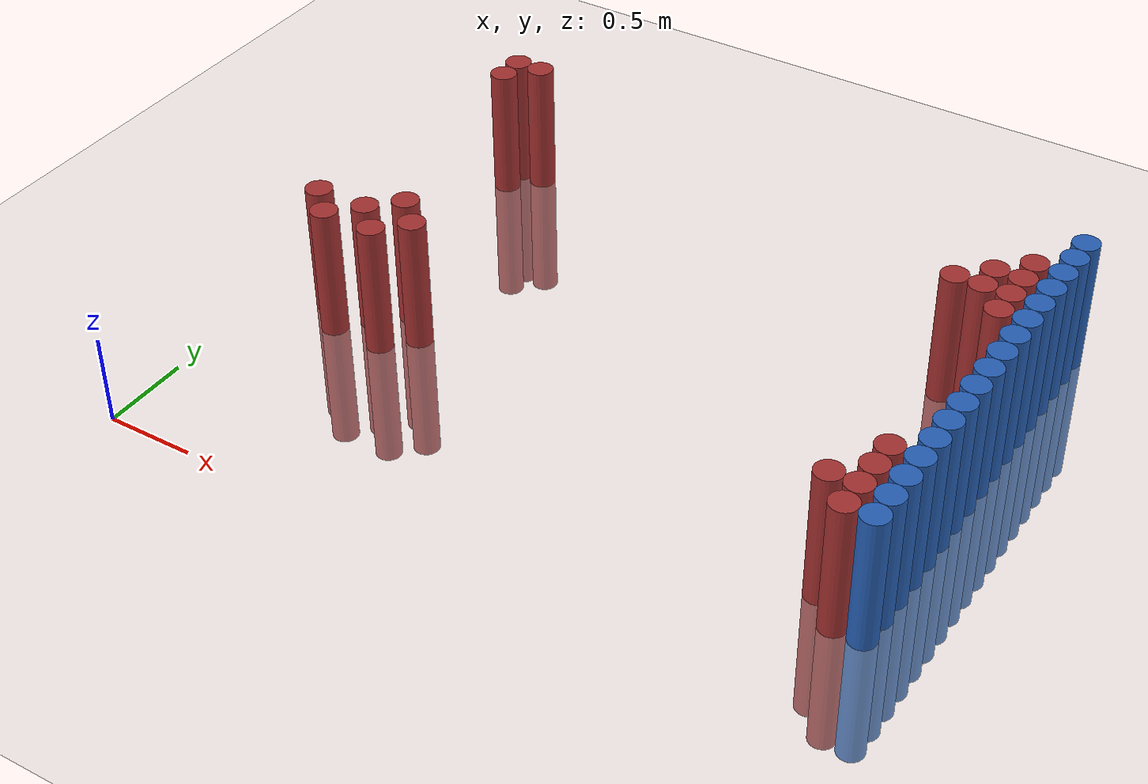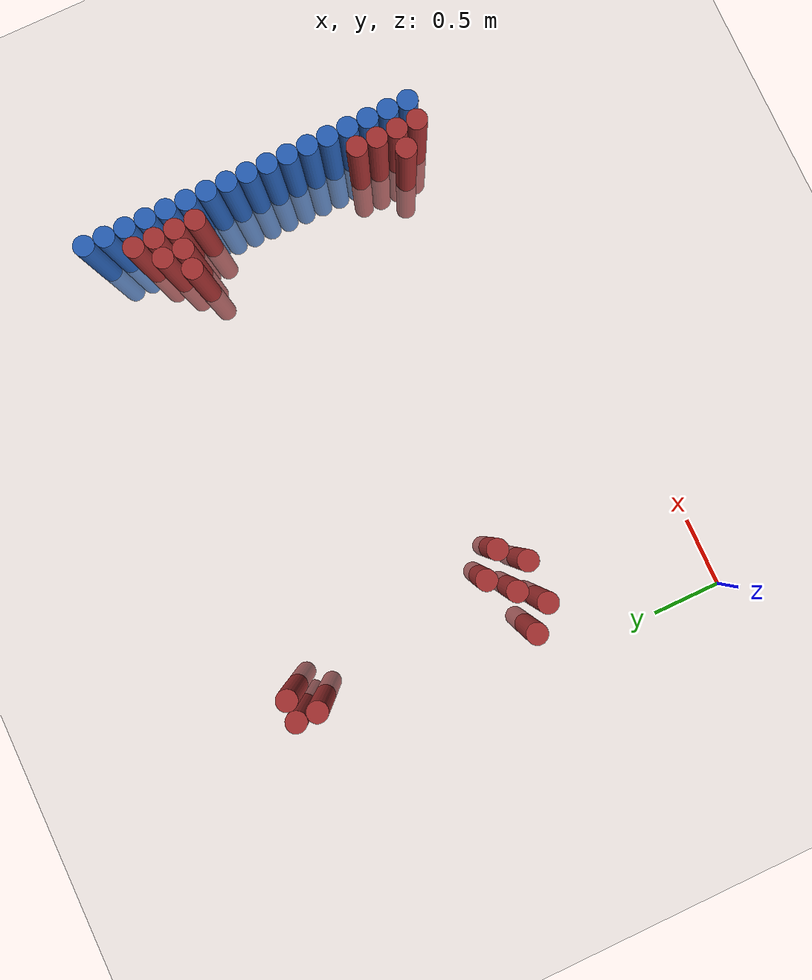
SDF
<sdf version="1.6">
 <world name="default">
  <model name="ground_plane">
   <static>1</static>
   <link name="link">
    <collision name="collision">
     <geometry><plane><normal>0 0 1</normal><size>100 100</size></plane></geometry>
     <surface><friction><ode><mu>100</mu><mu2>50</mu2></ode></friction></surface>
    </collision>
    <visual name="visual">
     <cast_shadows>0</cast_shadows>
     <geometry><plane><normal>0 0 1</normal><size>100 100</size></plane></geometry>
     <material>
      <script><uri>file://media/materials/scripts/gazebo.material</uri><name>Gazebo/Grey</name></script>
     </material>
    </visual>
   </link>
  </model>
  <model name="unit_cylinder_124">
   <static>1</static>
   <pose>3.925000 0.775000 0.000000 0.000000 0.000000 0.000000</pose>
   <link name="link">
    <inertial>
     <mass>1</mass>
     <inertia><ixx>0.145833</ixx><ixy>0</ixy><ixz>0</ixz><iyy>0.145833</iyy><iyz>0</iyz><izz>0.125</izz></inertia>
    </inertial>
    <collision name="collision">
     <geometry><cylinder><radius>0.075000</radius><length>1.5</length></cylinder></geometry>
    </collision>
    <visual name="visual">
     <geometry><cylinder><radius>0.075000</radius><length>1.5</length></cylinder></geometry>
     <material>
      <ambient>0.152000 0.379000 0.720000 1</ambient>
      <diffuse>0.152000 0.379000 0.720000 1</diffuse>
     </material>
     <material>
      <script><name>Gazebo/Grey</name><uri>file://media/materials/scripts/gazebo.material</uri></script>
     </material>
    </visual>
   </link>
  </model>
  <model name="unit_cylinder_126">
   <static>1</static>
   <pose>3.925000 0.925000 0.000000 0.000000 0.000000 0.000000</pose>
   <link name="link">
    <inertial>
     <mass>1</mass>
     <inertia><ixx>0.145833</ixx><ixy>0</ixy><ixz>0</ixz><iyy>0.145833</iyy><iyz>0</iyz><izz>0.125</izz></inertia>
    </inertial>
    <collision name="collision">
     <geometry><cylinder><radius>0.075000</radius><length>1.5</length></cylinder></geometry>
    </collision>
    <visual name="visual">
     <geometry><cylinder><radius>0.075000</radius><length>1.5</length></cylinder></geometry>
     <material>
      <ambient>0.152000 0.379000 0.720000 1</ambient>
      <diffuse>0.152000 0.379000 0.720000 1</diffuse>
     </material>
     <material>
      <script><name>Gazebo/Grey</name><uri>file://media/materials/scripts/gazebo.material</uri></script>
     </material>
    </visual>
   </link>
  </model>
  <model name="unit_cylinder_128">
   <static>1</static>
   <pose>3.925000 1.075000 0.000000 0.000000 0.000000 0.000000</pose>
   <link name="link">
    <inertial>
     <mass>1</mass>
     <inertia><ixx>0.145833</ixx><ixy>0</ixy><ixz>0</ixz><iyy>0.145833</iyy><iyz>0</iyz><izz>0.125</izz></inertia>
    </inertial>
    <collision name="collision">
     <geometry><cylinder><radius>0.075000</radius><length>1.5</length></cylinder></geometry>
    </collision>
    <visual name="visual">
     <geometry><cylinder><radius>0.075000</radius><length>1.5</length></cylinder></geometry>
     <material>
      <ambient>0.152000 0.379000 0.720000 1</ambient>
      <diffuse>0.152000 0.379000 0.720000 1</diffuse>
     </material>
     <material>
      <script><name>Gazebo/Grey</name><uri>file://media/materials/scripts/gazebo.material</uri></script>
     </material>
    </visual>
   </link>
  </model>
  <model name="unit_cylinder_130">
   <static>1</static>
   <pose>3.925000 1.225000 0.000000 0.000000 0.000000 0.000000</pose>
   <link name="link">
    <inertial>
     <mass>1</mass>
     <inertia><ixx>0.145833</ixx><ixy>0</ixy><ixz>0</ixz><iyy>0.145833</iyy><iyz>0</iyz><izz>0.125</izz></inertia>
    </inertial>
    <collision name="collision">
     <geometry><cylinder><radius>0.075000</radius><length>1.5</length></cylinder></geometry>
    </collision>
    <visual name="visual">
     <geometry><cylinder><radius>0.075000</radius><length>1.5</length></cylinder></geometry>
     <material>
      <ambient>0.152000 0.379000 0.720000 1</ambient>
      <diffuse>0.152000 0.379000 0.720000 1</diffuse>
     </material>
     <material>
      <script><name>Gazebo/Grey</name><uri>file://media/materials/scripts/gazebo.material</uri></script>
     </material>
    </visual>
   </link>
  </model>
  <model name="unit_cylinder_132">
   <static>1</static>
   <pose>3.925000 1.375000 0.000000 0.000000 0.000000 0.000000</pose>
   <link name="link">
    <inertial>
     <mass>1</mass>
     <inertia><ixx>0.145833</ixx><ixy>0</ixy><ixz>0</ixz><iyy>0.145833</iyy><iyz>0</iyz><izz>0.125</izz></inertia>
    </inertial>
    <collision name="collision">
     <geometry><cylinder><radius>0.075000</radius><length>1.5</length></cylinder></geometry>
    </collision>
    <visual name="visual">
     <geometry><cylinder><radius>0.075000</radius><length>1.5</length></cylinder></geometry>
     <material>
      <ambient>0.152000 0.379000 0.720000 1</ambient>
      <diffuse>0.152000 0.379000 0.720000 1</diffuse>
     </material>
     <material>
      <script><name>Gazebo/Grey</name><uri>file://media/materials/scripts/gazebo.material</uri></script>
     </material>
    </visual>
   </link>
  </model>
  <model name="unit_cylinder_134">
   <static>1</static>
   <pose>3.925000 1.525000 0.000000 0.000000 0.000000 0.000000</pose>
   <link name="link">
    <inertial>
     <mass>1</mass>
     <inertia><ixx>0.145833</ixx><ixy>0</ixy><ixz>0</ixz><iyy>0.145833</iyy><iyz>0</iyz><izz>0.125</izz></inertia>
    </inertial>
    <collision name="collision">
     <geometry><cylinder><radius>0.075000</radius><length>1.5</length></cylinder></geometry>
    </collision>
    <visual name="visual">
     <geometry><cylinder><radius>0.075000</radius><length>1.5</length></cylinder></geometry>
     <material>
      <ambient>0.152000 0.379000 0.720000 1</ambient>
      <diffuse>0.152000 0.379000 0.720000 1</diffuse>
     </material>
     <material>
      <script><name>Gazebo/Grey</name><uri>file://media/materials/scripts/gazebo.material</uri></script>
     </material>
    </visual>
   </link>
  </model>
  <model name="unit_cylinder_136">
   <static>1</static>
   <pose>3.925000 1.675000 0.000000 0.000000 0.000000 0.000000</pose>
   <link name="link">
    <inertial>
     <mass>1</mass>
     <inertia><ixx>0.145833</ixx><ixy>0</ixy><ixz>0</ixz><iyy>0.145833</iyy><iyz>0</iyz><izz>0.125</izz></inertia>
    </inertial>
    <collision name="collision">
     <geometry><cylinder><radius>0.075000</radius><length>1.5</length></cylinder></geometry>
    </collision>
    <visual name="visual">
     <geometry><cylinder><radius>0.075000</radius><length>1.5</length></cylinder></geometry>
     <material>
      <ambient>0.152000 0.379000 0.720000 1</ambient>
      <diffuse>0.152000 0.379000 0.720000 1</diffuse>
     </material>
     <material>
      <script><name>Gazebo/Grey</name><uri>file://media/materials/scripts/gazebo.material</uri></script>
     </material>
    </visual>
   </link>
  </model>
  <model name="unit_cylinder_138">
   <static>1</static>
   <pose>3.925000 1.825000 0.000000 0.000000 0.000000 0.000000</pose>
   <link name="link">
    <inertial>
     <mass>1</mass>
     <inertia><ixx>0.145833</ixx><ixy>0</ixy><ixz>0</ixz><iyy>0.145833</iyy><iyz>0</iyz><izz>0.125</izz></inertia>
    </inertial>
    <collision name="collision">
     <geometry><cylinder><radius>0.075000</radius><length>1.5</length></cylinder></geometry>
    </collision>
    <visual name="visual">
     <geometry><cylinder><radius>0.075000</radius><length>1.5</length></cylinder></geometry>
     <material>
      <ambient>0.152000 0.379000 0.720000 1</ambient>
      <diffuse>0.152000 0.379000 0.720000 1</diffuse>
     </material>
     <material>
      <script><name>Gazebo/Grey</name><uri>file://media/materials/scripts/gazebo.material</uri></script>
     </material>
    </visual>
   </link>
  </model>
  <model name="unit_cylinder_140">
   <static>1</static>
   <pose>3.925000 1.975000 0.000000 0.000000 0.000000 0.000000</pose>
   <link name="link">
    <inertial>
     <mass>1</mass>
     <inertia><ixx>0.145833</ixx><ixy>0</ixy><ixz>0</ixz><iyy>0.145833</iyy><iyz>0</iyz><izz>0.125</izz></inertia>
    </inertial>
    <collision name="collision">
     <geometry><cylinder><radius>0.075000</radius><length>1.5</length></cylinder></geometry>
    </collision>
    <visual name="visual">
     <geometry><cylinder><radius>0.075000</radius><length>1.5</length></cylinder></geometry>
     <material>
      <ambient>0.152000 0.379000 0.720000 1</ambient>
      <diffuse>0.152000 0.379000 0.720000 1</diffuse>
     </material>
     <material>
      <script><name>Gazebo/Grey</name><uri>file://media/materials/scripts/gazebo.material</uri></script>
     </material>
    </visual>
   </link>
  </model>
  <model name="unit_cylinder_142">
   <static>1</static>
   <pose>3.925000 2.125000 0.000000 0.000000 0.000000 0.000000</pose>
   <link name="link">
    <inertial>
     <mass>1</mass>
     <inertia><ixx>0.145833</ixx><ixy>0</ixy><ixz>0</ixz><iyy>0.145833</iyy><iyz>0</iyz><izz>0.125</izz></inertia>
    </inertial>
    <collision name="collision">
     <geometry><cylinder><radius>0.075000</radius><length>1.5</length></cylinder></geometry>
    </collision>
    <visual name="visual">
     <geometry><cylinder><radius>0.075000</radius><length>1.5</length></cylinder></geometry>
     <material>
      <ambient>0.152000 0.379000 0.720000 1</ambient>
      <diffuse>0.152000 0.379000 0.720000 1</diffuse>
     </material>
     <material>
      <script><name>Gazebo/Grey</name><uri>file://media/materials/scripts/gazebo.material</uri></script>
     </material>
    </visual>
   </link>
  </model>
  <model name="unit_cylinder_144">
   <static>1</static>
   <pose>3.925000 2.275000 0.000000 0.000000 0.000000 0.000000</pose>
   <link name="link">
    <inertial>
     <mass>1</mass>
     <inertia><ixx>0.145833</ixx><ixy>0</ixy><ixz>0</ixz><iyy>0.145833</iyy><iyz>0</iyz><izz>0.125</izz></inertia>
    </inertial>
    <collision name="collision">
     <geometry><cylinder><radius>0.075000</radius><length>1.5</length></cylinder></geometry>
    </collision>
    <visual name="visual">
     <geometry><cylinder><radius>0.075000</radius><length>1.5</length></cylinder></geometry>
     <material>
      <ambient>0.152000 0.379000 0.720000 1</ambient>
      <diffuse>0.152000 0.379000 0.720000 1</diffuse>
     </material>
     <material>
      <script><name>Gazebo/Grey</name><uri>file://media/materials/scripts/gazebo.material</uri></script>
     </material>
    </visual>
   </link>
  </model>
  <model name="unit_cylinder_146">
   <static>1</static>
   <pose>3.925000 2.425000 0.000000 0.000000 0.000000 0.000000</pose>
   <link name="link">
    <inertial>
     <mass>1</mass>
     <inertia><ixx>0.145833</ixx><ixy>0</ixy><ixz>0</ixz><iyy>0.145833</iyy><iyz>0</iyz><izz>0.125</izz></inertia>
    </inertial>
    <collision name="collision">
     <geometry><cylinder><radius>0.075000</radius><length>1.5</length></cylinder></geometry>
    </collision>
    <visual name="visual">
     <geometry><cylinder><radius>0.075000</radius><length>1.5</length></cylinder></geometry>
     <material>
      <ambient>0.152000 0.379000 0.720000 1</ambient>
      <diffuse>0.152000 0.379000 0.720000 1</diffuse>
     </material>
     <material>
      <script><name>Gazebo/Grey</name><uri>file://media/materials/scripts/gazebo.material</uri></script>
     </material>
    </visual>
   </link>
  </model>
  <model name="unit_cylinder_148">
   <static>1</static>
   <pose>3.925000 2.575000 0.000000 0.000000 0.000000 0.000000</pose>
   <link name="link">
    <inertial>
     <mass>1</mass>
     <inertia><ixx>0.145833</ixx><ixy>0</ixy><ixz>0</ixz><iyy>0.145833</iyy><iyz>0</iyz><izz>0.125</izz></inertia>
    </inertial>
    <collision name="collision">
     <geometry><cylinder><radius>0.075000</radius><length>1.5</length></cylinder></geometry>
    </collision>
    <visual name="visual">
     <geometry><cylinder><radius>0.075000</radius><length>1.5</length></cylinder></geometry>
     <material>
      <ambient>0.152000 0.379000 0.720000 1</ambient>
      <diffuse>0.152000 0.379000 0.720000 1</diffuse>
     </material>
     <material>
      <script><name>Gazebo/Grey</name><uri>file://media/materials/scripts/gazebo.material</uri></script>
     </material>
    </visual>
   </link>
  </model>
  <model name="unit_cylinder_150">
   <static>1</static>
   <pose>3.925000 2.725000 0.000000 0.000000 0.000000 0.000000</pose>
   <link name="link">
    <inertial>
     <mass>1</mass>
     <inertia><ixx>0.145833</ixx><ixy>0</ixy><ixz>0</ixz><iyy>0.145833</iyy><iyz>0</iyz><izz>0.125</izz></inertia>
    </inertial>
    <collision name="collision">
     <geometry><cylinder><radius>0.075000</radius><length>1.5</length></cylinder></geometry>
    </collision>
    <visual name="visual">
     <geometry><cylinder><radius>0.075000</radius><length>1.5</length></cylinder></geometry>
     <material>
      <ambient>0.152000 0.379000 0.720000 1</ambient>
      <diffuse>0.152000 0.379000 0.720000 1</diffuse>
     </material>
     <material>
      <script><name>Gazebo/Grey</name><uri>file://media/materials/scripts/gazebo.material</uri></script>
     </material>
    </visual>
   </link>
  </model>
  <model name="unit_cylinder_152">
   <static>1</static>
   <pose>3.925000 2.875000 0.000000 0.000000 0.000000 0.000000</pose>
   <link name="link">
    <inertial>
     <mass>1</mass>
     <inertia><ixx>0.145833</ixx><ixy>0</ixy><ixz>0</ixz><iyy>0.145833</iyy><iyz>0</iyz><izz>0.125</izz></inertia>
    </inertial>
    <collision name="collision">
     <geometry><cylinder><radius>0.075000</radius><length>1.5</length></cylinder></geometry>
    </collision>
    <visual name="visual">
     <geometry><cylinder><radius>0.075000</radius><length>1.5</length></cylinder></geometry>
     <material>
      <ambient>0.152000 0.379000 0.720000 1</ambient>
      <diffuse>0.152000 0.379000 0.720000 1</diffuse>
     </material>
     <material>
      <script><name>Gazebo/Grey</name><uri>file://media/materials/scripts/gazebo.material</uri></script>
     </material>
    </visual>
   </link>
  </model>
  <model name="unit_cylinder_154">
   <static>1</static>
   <pose>3.925000 3.025000 0.000000 0.000000 0.000000 0.000000</pose>
   <link name="link">
    <inertial>
     <mass>1</mass>
     <inertia><ixx>0.145833</ixx><ixy>0</ixy><ixz>0</ixz><iyy>0.145833</iyy><iyz>0</iyz><izz>0.125</izz></inertia>
    </inertial>
    <collision name="collision">
     <geometry><cylinder><radius>0.075000</radius><length>1.5</length></cylinder></geometry>
    </collision>
    <visual name="visual">
     <geometry><cylinder><radius>0.075000</radius><length>1.5</length></cylinder></geometry>
     <material>
      <ambient>0.152000 0.379000 0.720000 1</ambient>
      <diffuse>0.152000 0.379000 0.720000 1</diffuse>
     </material>
     <material>
      <script><name>Gazebo/Grey</name><uri>file://media/materials/scripts/gazebo.material</uri></script>
     </material>
    </visual>
   </link>
  </model>
  <model name="unit_cylinder_322">
   <static>1</static>
   <pose>0.325000 1.375000 0.000000 0.000000 0.000000 0.000000</pose>
   <link name="link">
    <inertial>
     <mass>1</mass>
     <inertia><ixx>0.145833</ixx><ixy>0</ixy><ixz>0</ixz><iyy>0.145833</iyy><iyz>0</iyz><izz>0.125</izz></inertia>
    </inertial>
    <collision name="collision">
     <geometry><cylinder><radius>0.075000</radius><length>1.5</length></cylinder></geometry>
    </collision>
    <visual name="visual">
     <geometry><cylinder><radius>0.075000</radius><length>1.5</length></cylinder></geometry>
     <material>
      <ambient>0.648000 0.192000 0.192000 1</ambient>
      <diffuse>0.648000 0.192000 0.192000 1</diffuse>
     </material>
     <material>
      <script><name>Gazebo/Grey</name><uri>file://media/materials/scripts/gazebo.material</uri></script>
     </material>
    </visual>
   </link>
  </model>
  <model name="unit_cylinder_323">
   <static>1</static>
   <pose>0.475000 1.225000 0.000000 0.000000 0.000000 0.000000</pose>
   <link name="link">
    <inertial>
     <mass>1</mass>
     <inertia><ixx>0.145833</ixx><ixy>0</ixy><ixz>0</ixz><iyy>0.145833</iyy><iyz>0</iyz><izz>0.125</izz></inertia>
    </inertial>
    <collision name="collision">
     <geometry><cylinder><radius>0.075000</radius><length>1.5</length></cylinder></geometry>
    </collision>
    <visual name="visual">
     <geometry><cylinder><radius>0.075000</radius><length>1.5</length></cylinder></geometry>
     <material>
      <ambient>0.648000 0.192000 0.192000 1</ambient>
      <diffuse>0.648000 0.192000 0.192000 1</diffuse>
     </material>
     <material>
      <script><name>Gazebo/Grey</name><uri>file://media/materials/scripts/gazebo.material</uri></script>
     </material>
    </visual>
   </link>
  </model>
  <model name="unit_cylinder_324">
   <static>1</static>
   <pose>0.475000 2.875000 0.000000 0.000000 0.000000 0.000000</pose>
   <link name="link">
    <inertial>
     <mass>1</mass>
     <inertia><ixx>0.145833</ixx><ixy>0</ixy><ixz>0</ixz><iyy>0.145833</iyy><iyz>0</iyz><izz>0.125</izz></inertia>
    </inertial>
    <collision name="collision">
     <geometry><cylinder><radius>0.075000</radius><length>1.5</length></cylinder></geometry>
    </collision>
    <visual name="visual">
     <geometry><cylinder><radius>0.075000</radius><length>1.5</length></cylinder></geometry>
     <material>
      <ambient>0.648000 0.192000 0.192000 1</ambient>
      <diffuse>0.648000 0.192000 0.192000 1</diffuse>
     </material>
     <material>
      <script><name>Gazebo/Grey</name><uri>file://media/materials/scripts/gazebo.material</uri></script>
     </material>
    </visual>
   </link>
  </model>
  <model name="unit_cylinder_325">
   <static>1</static>
   <pose>0.475000 3.025000 0.000000 0.000000 0.000000 0.000000</pose>
   <link name="link">
    <inertial>
     <mass>1</mass>
     <inertia><ixx>0.145833</ixx><ixy>0</ixy><ixz>0</ixz><iyy>0.145833</iyy><iyz>0</iyz><izz>0.125</izz></inertia>
    </inertial>
    <collision name="collision">
     <geometry><cylinder><radius>0.075000</radius><length>1.5</length></cylinder></geometry>
    </collision>
    <visual name="visual">
     <geometry><cylinder><radius>0.075000</radius><length>1.5</length></cylinder></geometry>
     <material>
      <ambient>0.648000 0.192000 0.192000 1</ambient>
      <diffuse>0.648000 0.192000 0.192000 1</diffuse>
     </material>
     <material>
      <script><name>Gazebo/Grey</name><uri>file://media/materials/scripts/gazebo.material</uri></script>
     </material>
    </visual>
   </link>
  </model>
  <model name="unit_cylinder_326">
   <static>1</static>
   <pose>0.625000 1.375000 0.000000 0.000000 0.000000 0.000000</pose>
   <link name="link">
    <inertial>
     <mass>1</mass>
     <inertia><ixx>0.145833</ixx><ixy>0</ixy><ixz>0</ixz><iyy>0.145833</iyy><iyz>0</iyz><izz>0.125</izz></inertia>
    </inertial>
    <collision name="collision">
     <geometry><cylinder><radius>0.075000</radius><length>1.5</length></cylinder></geometry>
    </collision>
    <visual name="visual">
     <geometry><cylinder><radius>0.075000</radius><length>1.5</length></cylinder></geometry>
     <material>
      <ambient>0.648000 0.192000 0.192000 1</ambient>
      <diffuse>0.648000 0.192000 0.192000 1</diffuse>
     </material>
     <material>
      <script><name>Gazebo/Grey</name><uri>file://media/materials/scripts/gazebo.material</uri></script>
     </material>
    </visual>
   </link>
  </model>
  <model name="unit_cylinder_327">
   <static>1</static>
   <pose>0.625000 3.025000 0.000000 0.000000 0.000000 0.000000</pose>
   <link name="link">
    <inertial>
     <mass>1</mass>
     <inertia><ixx>0.145833</ixx><ixy>0</ixy><ixz>0</ixz><iyy>0.145833</iyy><iyz>0</iyz><izz>0.125</izz></inertia>
    </inertial>
    <collision name="collision">
     <geometry><cylinder><radius>0.075000</radius><length>1.5</length></cylinder></geometry>
    </collision>
    <visual name="visual">
     <geometry><cylinder><radius>0.075000</radius><length>1.5</length></cylinder></geometry>
     <material>
      <ambient>0.648000 0.192000 0.192000 1</ambient>
      <diffuse>0.648000 0.192000 0.192000 1</diffuse>
     </material>
     <material>
      <script><name>Gazebo/Grey</name><uri>file://media/materials/scripts/gazebo.material</uri></script>
     </material>
    </visual>
   </link>
  </model>
  <model name="unit_cylinder_328">
   <static>1</static>
   <pose>0.775000 1.225000 0.000000 0.000000 0.000000 0.000000</pose>
   <link name="link">
    <inertial>
     <mass>1</mass>
     <inertia><ixx>0.145833</ixx><ixy>0</ixy><ixz>0</ixz><iyy>0.145833</iyy><iyz>0</iyz><izz>0.125</izz></inertia>
    </inertial>
    <collision name="collision">
     <geometry><cylinder><radius>0.075000</radius><length>1.5</length></cylinder></geometry>
    </collision>
    <visual name="visual">
     <geometry><cylinder><radius>0.075000</radius><length>1.5</length></cylinder></geometry>
     <material>
      <ambient>0.648000 0.192000 0.192000 1</ambient>
      <diffuse>0.648000 0.192000 0.192000 1</diffuse>
     </material>
     <material>
      <script><name>Gazebo/Grey</name><uri>file://media/materials/scripts/gazebo.material</uri></script>
     </material>
    </visual>
   </link>
  </model>
  <model name="unit_cylinder_329">
   <static>1</static>
   <pose>0.775000 1.525000 0.000000 0.000000 0.000000 0.000000</pose>
   <link name="link">
    <inertial>
     <mass>1</mass>
     <inertia><ixx>0.145833</ixx><ixy>0</ixy><ixz>0</ixz><iyy>0.145833</iyy><iyz>0</iyz><izz>0.125</izz></inertia>
    </inertial>
    <collision name="collision">
     <geometry><cylinder><radius>0.075000</radius><length>1.5</length></cylinder></geometry>
    </collision>
    <visual name="visual">
     <geometry><cylinder><radius>0.075000</radius><length>1.5</length></cylinder></geometry>
     <material>
      <ambient>0.648000 0.192000 0.192000 1</ambient>
      <diffuse>0.648000 0.192000 0.192000 1</diffuse>
     </material>
     <material>
      <script><name>Gazebo/Grey</name><uri>file://media/materials/scripts/gazebo.material</uri></script>
     </material>
    </visual>
   </link>
  </model>
  <model name="unit_cylinder_330">
   <static>1</static>
   <pose>0.925000 1.375000 0.000000 0.000000 0.000000 0.000000</pose>
   <link name="link">
    <inertial>
     <mass>1</mass>
     <inertia><ixx>0.145833</ixx><ixy>0</ixy><ixz>0</ixz><iyy>0.145833</iyy><iyz>0</iyz><izz>0.125</izz></inertia>
    </inertial>
    <collision name="collision">
     <geometry><cylinder><radius>0.075000</radius><length>1.5</length></cylinder></geometry>
    </collision>
    <visual name="visual">
     <geometry><cylinder><radius>0.075000</radius><length>1.5</length></cylinder></geometry>
     <material>
      <ambient>0.648000 0.192000 0.192000 1</ambient>
      <diffuse>0.648000 0.192000 0.192000 1</diffuse>
     </material>
     <material>
      <script><name>Gazebo/Grey</name><uri>file://media/materials/scripts/gazebo.material</uri></script>
     </material>
    </visual>
   </link>
  </model>
  <model name="unit_cylinder_344">
   <static>1</static>
   <pose>3.475000 2.425000 0.000000 0.000000 0.000000 0.000000</pose>
   <link name="link">
    <inertial>
     <mass>1</mass>
     <inertia><ixx>0.145833</ixx><ixy>0</ixy><ixz>0</ixz><iyy>0.145833</iyy><iyz>0</iyz><izz>0.125</izz></inertia>
    </inertial>
    <collision name="collision">
     <geometry><cylinder><radius>0.075000</radius><length>1.5</length></cylinder></geometry>
    </collision>
    <visual name="visual">
     <geometry><cylinder><radius>0.075000</radius><length>1.5</length></cylinder></geometry>
     <material>
      <ambient>0.648000 0.192000 0.192000 1</ambient>
      <diffuse>0.648000 0.192000 0.192000 1</diffuse>
     </material>
     <material>
      <script><name>Gazebo/Grey</name><uri>file://media/materials/scripts/gazebo.material</uri></script>
     </material>
    </visual>
   </link>
  </model>
  <model name="unit_cylinder_347">
   <static>1</static>
   <pose>3.625000 0.775000 0.000000 0.000000 0.000000 0.000000</pose>
   <link name="link">
    <inertial>
     <mass>1</mass>
     <inertia><ixx>0.145833</ixx><ixy>0</ixy><ixz>0</ixz><iyy>0.145833</iyy><iyz>0</iyz><izz>0.125</izz></inertia>
    </inertial>
    <collision name="collision">
     <geometry><cylinder><radius>0.075000</radius><length>1.5</length></cylinder></geometry>
    </collision>
    <visual name="visual">
     <geometry><cylinder><radius>0.075000</radius><length>1.5</length></cylinder></geometry>
     <material>
      <ambient>0.648000 0.192000 0.192000 1</ambient>
      <diffuse>0.648000 0.192000 0.192000 1</diffuse>
     </material>
     <material>
      <script><name>Gazebo/Grey</name><uri>file://media/materials/scripts/gazebo.material</uri></script>
     </material>
    </visual>
   </link>
  </model>
  <model name="unit_cylinder_348">
   <static>1</static>
   <pose>3.625000 2.425000 0.000000 0.000000 0.000000 0.000000</pose>
   <link name="link">
    <inertial>
     <mass>1</mass>
     <inertia><ixx>0.145833</ixx><ixy>0</ixy><ixz>0</ixz><iyy>0.145833</iyy><iyz>0</iyz><izz>0.125</izz></inertia>
    </inertial>
    <collision name="collision">
     <geometry><cylinder><radius>0.075000</radius><length>1.5</length></cylinder></geometry>
    </collision>
    <visual name="visual">
     <geometry><cylinder><radius>0.075000</radius><length>1.5</length></cylinder></geometry>
     <material>
      <ambient>0.648000 0.192000 0.192000 1</ambient>
      <diffuse>0.648000 0.192000 0.192000 1</diffuse>
     </material>
     <material>
      <script><name>Gazebo/Grey</name><uri>file://media/materials/scripts/gazebo.material</uri></script>
     </material>
    </visual>
   </link>
  </model>
  <model name="unit_cylinder_349">
   <static>1</static>
   <pose>3.625000 2.575000 0.000000 0.000000 0.000000 0.000000</pose>
   <link name="link">
    <inertial>
     <mass>1</mass>
     <inertia><ixx>0.145833</ixx><ixy>0</ixy><ixz>0</ixz><iyy>0.145833</iyy><iyz>0</iyz><izz>0.125</izz></inertia>
    </inertial>
    <collision name="collision">
     <geometry><cylinder><radius>0.075000</radius><length>1.5</length></cylinder></geometry>
    </collision>
    <visual name="visual">
     <geometry><cylinder><radius>0.075000</radius><length>1.5</length></cylinder></geometry>
     <material>
      <ambient>0.648000 0.192000 0.192000 1</ambient>
      <diffuse>0.648000 0.192000 0.192000 1</diffuse>
     </material>
     <material>
      <script><name>Gazebo/Grey</name><uri>file://media/materials/scripts/gazebo.material</uri></script>
     </material>
    </visual>
   </link>
  </model>
  <model name="unit_cylinder_361">
   <static>1</static>
   <pose>3.775000 0.625000 0.000000 0.000000 0.000000 0.000000</pose>
   <link name="link">
    <inertial>
     <mass>1</mass>
     <inertia><ixx>0.145833</ixx><ixy>0</ixy><ixz>0</ixz><iyy>0.145833</iyy><iyz>0</iyz><izz>0.125</izz></inertia>
    </inertial>
    <collision name="collision">
     <geometry><cylinder><radius>0.075000</radius><length>1.5</length></cylinder></geometry>
    </collision>
    <visual name="visual">
     <geometry><cylinder><radius>0.075000</radius><length>1.5</length></cylinder></geometry>
     <material>
      <ambient>0.648000 0.192000 0.192000 1</ambient>
      <diffuse>0.648000 0.192000 0.192000 1</diffuse>
     </material>
     <material>
      <script><name>Gazebo/Grey</name><uri>file://media/materials/scripts/gazebo.material</uri></script>
     </material>
    </visual>
   </link>
  </model>
  <model name="unit_cylinder_362">
   <static>1</static>
   <pose>3.775000 0.775000 0.000000 0.000000 0.000000 0.000000</pose>
   <link name="link">
    <inertial>
     <mass>1</mass>
     <inertia><ixx>0.145833</ixx><ixy>0</ixy><ixz>0</ixz><iyy>0.145833</iyy><iyz>0</iyz><izz>0.125</izz></inertia>
    </inertial>
    <collision name="collision">
     <geometry><cylinder><radius>0.075000</radius><length>1.5</length></cylinder></geometry>
    </collision>
    <visual name="visual">
     <geometry><cylinder><radius>0.075000</radius><length>1.5</length></cylinder></geometry>
     <material>
      <ambient>0.648000 0.192000 0.192000 1</ambient>
      <diffuse>0.648000 0.192000 0.192000 1</diffuse>
     </material>
     <material>
      <script><name>Gazebo/Grey</name><uri>file://media/materials/scripts/gazebo.material</uri></script>
     </material>
    </visual>
   </link>
  </model>
  <model name="unit_cylinder_363">
   <static>1</static>
   <pose>3.775000 0.925000 0.000000 0.000000 0.000000 0.000000</pose>
   <link name="link">
    <inertial>
     <mass>1</mass>
     <inertia><ixx>0.145833</ixx><ixy>0</ixy><ixz>0</ixz><iyy>0.145833</iyy><iyz>0</iyz><izz>0.125</izz></inertia>
    </inertial>
    <collision name="collision">
     <geometry><cylinder><radius>0.075000</radius><length>1.5</length></cylinder></geometry>
    </collision>
    <visual name="visual">
     <geometry><cylinder><radius>0.075000</radius><length>1.5</length></cylinder></geometry>
     <material>
      <ambient>0.648000 0.192000 0.192000 1</ambient>
      <diffuse>0.648000 0.192000 0.192000 1</diffuse>
     </material>
     <material>
      <script><name>Gazebo/Grey</name><uri>file://media/materials/scripts/gazebo.material</uri></script>
     </material>
    </visual>
   </link>
  </model>
  <model name="unit_cylinder_364">
   <static>1</static>
   <pose>3.775000 1.075000 0.000000 0.000000 0.000000 0.000000</pose>
   <link name="link">
    <inertial>
     <mass>1</mass>
     <inertia><ixx>0.145833</ixx><ixy>0</ixy><ixz>0</ixz><iyy>0.145833</iyy><iyz>0</iyz><izz>0.125</izz></inertia>
    </inertial>
    <collision name="collision">
     <geometry><cylinder><radius>0.075000</radius><length>1.5</length></cylinder></geometry>
    </collision>
    <visual name="visual">
     <geometry><cylinder><radius>0.075000</radius><length>1.5</length></cylinder></geometry>
     <material>
      <ambient>0.648000 0.192000 0.192000 1</ambient>
      <diffuse>0.648000 0.192000 0.192000 1</diffuse>
     </material>
     <material>
      <script><name>Gazebo/Grey</name><uri>file://media/materials/scripts/gazebo.material</uri></script>
     </material>
    </visual>
   </link>
  </model>
  <model name="unit_cylinder_365">
   <static>1</static>
   <pose>3.775000 2.275000 0.000000 0.000000 0.000000 0.000000</pose>
   <link name="link">
    <inertial>
     <mass>1</mass>
     <inertia><ixx>0.145833</ixx><ixy>0</ixy><ixz>0</ixz><iyy>0.145833</iyy><iyz>0</iyz><izz>0.125</izz></inertia>
    </inertial>
    <collision name="collision">
     <geometry><cylinder><radius>0.075000</radius><length>1.5</length></cylinder></geometry>
    </collision>
    <visual name="visual">
     <geometry><cylinder><radius>0.075000</radius><length>1.5</length></cylinder></geometry>
     <material>
      <ambient>0.648000 0.192000 0.192000 1</ambient>
      <diffuse>0.648000 0.192000 0.192000 1</diffuse>
     </material>
     <material>
      <script><name>Gazebo/Grey</name><uri>file://media/materials/scripts/gazebo.material</uri></script>
     </material>
    </visual>
   </link>
  </model>
  <model name="unit_cylinder_366">
   <static>1</static>
   <pose>3.775000 2.425000 0.000000 0.000000 0.000000 0.000000</pose>
   <link name="link">
    <inertial>
     <mass>1</mass>
     <inertia><ixx>0.145833</ixx><ixy>0</ixy><ixz>0</ixz><iyy>0.145833</iyy><iyz>0</iyz><izz>0.125</izz></inertia>
    </inertial>
    <collision name="collision">
     <geometry><cylinder><radius>0.075000</radius><length>1.5</length></cylinder></geometry>
    </collision>
    <visual name="visual">
     <geometry><cylinder><radius>0.075000</radius><length>1.5</length></cylinder></geometry>
     <material>
      <ambient>0.648000 0.192000 0.192000 1</ambient>
      <diffuse>0.648000 0.192000 0.192000 1</diffuse>
     </material>
     <material>
      <script><name>Gazebo/Grey</name><uri>file://media/materials/scripts/gazebo.material</uri></script>
     </material>
    </visual>
   </link>
  </model>
  <model name="unit_cylinder_367">
   <static>1</static>
   <pose>3.775000 2.575000 0.000000 0.000000 0.000000 0.000000</pose>
   <link name="link">
    <inertial>
     <mass>1</mass>
     <inertia><ixx>0.145833</ixx><ixy>0</ixy><ixz>0</ixz><iyy>0.145833</iyy><iyz>0</iyz><izz>0.125</izz></inertia>
    </inertial>
    <collision name="collision">
     <geometry><cylinder><radius>0.075000</radius><length>1.5</length></cylinder></geometry>
    </collision>
    <visual name="visual">
     <geometry><cylinder><radius>0.075000</radius><length>1.5</length></cylinder></geometry>
     <material>
      <ambient>0.648000 0.192000 0.192000 1</ambient>
      <diffuse>0.648000 0.192000 0.192000 1</diffuse>
     </material>
     <material>
      <script><name>Gazebo/Grey</name><uri>file://media/materials/scripts/gazebo.material</uri></script>
     </material>
    </visual>
   </link>
  </model>
  <model name="unit_cylinder_368">
   <static>1</static>
   <pose>3.775000 2.725000 0.000000 0.000000 0.000000 0.000000</pose>
   <link name="link">
    <inertial>
     <mass>1</mass>
     <inertia><ixx>0.145833</ixx><ixy>0</ixy><ixz>0</ixz><iyy>0.145833</iyy><iyz>0</iyz><izz>0.125</izz></inertia>
    </inertial>
    <collision name="collision">
     <geometry><cylinder><radius>0.075000</radius><length>1.5</length></cylinder></geometry>
    </collision>
    <visual name="visual">
     <geometry><cylinder><radius>0.075000</radius><length>1.5</length></cylinder></geometry>
     <material>
      <ambient>0.648000 0.192000 0.192000 1</ambient>
      <diffuse>0.648000 0.192000 0.192000 1</diffuse>
     </material>
     <material>
      <script><name>Gazebo/Grey</name><uri>file://media/materials/scripts/gazebo.material</uri></script>
     </material>
    </visual>
   </link>
  </model>
  <model name="unit_cylinder_389">
   <static>1</static>
   <pose>3.925000 0.625000 0.000000 0.000000 0.000000 0.000000</pose>
   <link name="link">
    <inertial>
     <mass>1</mass>
     <inertia><ixx>0.145833</ixx><ixy>0</ixy><ixz>0</ixz><iyy>0.145833</iyy><iyz>0</iyz><izz>0.125</izz></inertia>
    </inertial>
    <collision name="collision">
     <geometry><cylinder><radius>0.075000</radius><length>1.5</length></cylinder></geometry>
    </collision>
    <visual name="visual">
     <geometry><cylinder><radius>0.075000</radius><length>1.5</length></cylinder></geometry>
     <material>
      <ambient>0.152000 0.379000 0.720000 1</ambient>
      <diffuse>0.152000 0.379000 0.720000 1</diffuse>
     </material>
     <material>
      <script><name>Gazebo/Grey</name><uri>file://media/materials/scripts/gazebo.material</uri></script>
     </material>
    </visual>
   </link>
  </model>
  <model name="unit_cylinder_390">
   <static>1</static>
   <pose>3.925000 0.775000 0.000000 0.000000 0.000000 0.000000</pose>
   <link name="link">
    <inertial>
     <mass>1</mass>
     <inertia><ixx>0.145833</ixx><ixy>0</ixy><ixz>0</ixz><iyy>0.145833</iyy><iyz>0</iyz><izz>0.125</izz></inertia>
    </inertial>
    <collision name="collision">
     <geometry><cylinder><radius>0.075000</radius><length>1.5</length></cylinder></geometry>
    </collision>
    <visual name="visual">
     <geometry><cylinder><radius>0.075000</radius><length>1.5</length></cylinder></geometry>
     <material>
      <ambient>0.152000 0.379000 0.720000 1</ambient>
      <diffuse>0.152000 0.379000 0.720000 1</diffuse>
     </material>
     <material>
      <script><name>Gazebo/Grey</name><uri>file://media/materials/scripts/gazebo.material</uri></script>
     </material>
    </visual>
   </link>
  </model>
  <model name="unit_cylinder_391">
   <static>1</static>
   <pose>3.925000 0.925000 0.000000 0.000000 0.000000 0.000000</pose>
   <link name="link">
    <inertial>
     <mass>1</mass>
     <inertia><ixx>0.145833</ixx><ixy>0</ixy><ixz>0</ixz><iyy>0.145833</iyy><iyz>0</iyz><izz>0.125</izz></inertia>
    </inertial>
    <collision name="collision">
     <geometry><cylinder><radius>0.075000</radius><length>1.5</length></cylinder></geometry>
    </collision>
    <visual name="visual">
     <geometry><cylinder><radius>0.075000</radius><length>1.5</length></cylinder></geometry>
     <material>
      <ambient>0.152000 0.379000 0.720000 1</ambient>
      <diffuse>0.152000 0.379000 0.720000 1</diffuse>
     </material>
     <material>
      <script><name>Gazebo/Grey</name><uri>file://media/materials/scripts/gazebo.material</uri></script>
     </material>
    </visual>
   </link>
  </model>
  <model name="unit_cylinder_392">
   <static>1</static>
   <pose>3.925000 1.075000 0.000000 0.000000 0.000000 0.000000</pose>
   <link name="link">
    <inertial>
     <mass>1</mass>
     <inertia><ixx>0.145833</ixx><ixy>0</ixy><ixz>0</ixz><iyy>0.145833</iyy><iyz>0</iyz><izz>0.125</izz></inertia>
    </inertial>
    <collision name="collision">
     <geometry><cylinder><radius>0.075000</radius><length>1.5</length></cylinder></geometry>
    </collision>
    <visual name="visual">
     <geometry><cylinder><radius>0.075000</radius><length>1.5</length></cylinder></geometry>
     <material>
      <ambient>0.152000 0.379000 0.720000 1</ambient>
      <diffuse>0.152000 0.379000 0.720000 1</diffuse>
     </material>
     <material>
      <script><name>Gazebo/Grey</name><uri>file://media/materials/scripts/gazebo.material</uri></script>
     </material>
    </visual>
   </link>
  </model>
  <model name="unit_cylinder_393">
   <static>1</static>
   <pose>3.925000 1.225000 0.000000 0.000000 0.000000 0.000000</pose>
   <link name="link">
    <inertial>
     <mass>1</mass>
     <inertia><ixx>0.145833</ixx><ixy>0</ixy><ixz>0</ixz><iyy>0.145833</iyy><iyz>0</iyz><izz>0.125</izz></inertia>
    </inertial>
    <collision name="collision">
     <geometry><cylinder><radius>0.075000</radius><length>1.5</length></cylinder></geometry>
    </collision>
    <visual name="visual">
     <geometry><cylinder><radius>0.075000</radius><length>1.5</length></cylinder></geometry>
     <material>
      <ambient>0.152000 0.379000 0.720000 1</ambient>
      <diffuse>0.152000 0.379000 0.720000 1</diffuse>
     </material>
     <material>
      <script><name>Gazebo/Grey</name><uri>file://media/materials/scripts/gazebo.material</uri></script>
     </material>
    </visual>
   </link>
  </model>
  <model name="unit_cylinder_394">
   <static>1</static>
   <pose>3.925000 1.375000 0.000000 0.000000 0.000000 0.000000</pose>
   <link name="link">
    <inertial>
     <mass>1</mass>
     <inertia><ixx>0.145833</ixx><ixy>0</ixy><ixz>0</ixz><iyy>0.145833</iyy><iyz>0</iyz><izz>0.125</izz></inertia>
    </inertial>
    <collision name="collision">
     <geometry><cylinder><radius>0.075000</radius><length>1.5</length></cylinder></geometry>
    </collision>
    <visual name="visual">
     <geometry><cylinder><radius>0.075000</radius><length>1.5</length></cylinder></geometry>
     <material>
      <ambient>0.152000 0.379000 0.720000 1</ambient>
      <diffuse>0.152000 0.379000 0.720000 1</diffuse>
     </material>
     <material>
      <script><name>Gazebo/Grey</name><uri>file://media/materials/scripts/gazebo.material</uri></script>
     </material>
    </visual>
   </link>
  </model>
  <model name="unit_cylinder_395">
   <static>1</static>
   <pose>3.925000 1.525000 0.000000 0.000000 0.000000 0.000000</pose>
   <link name="link">
    <inertial>
     <mass>1</mass>
     <inertia><ixx>0.145833</ixx><ixy>0</ixy><ixz>0</ixz><iyy>0.145833</iyy><iyz>0</iyz><izz>0.125</izz></inertia>
    </inertial>
    <collision name="collision">
     <geometry><cylinder><radius>0.075000</radius><length>1.5</length></cylinder></geometry>
    </collision>
    <visual name="visual">
     <geometry><cylinder><radius>0.075000</radius><length>1.5</length></cylinder></geometry>
     <material>
      <ambient>0.152000 0.379000 0.720000 1</ambient>
      <diffuse>0.152000 0.379000 0.720000 1</diffuse>
     </material>
     <material>
      <script><name>Gazebo/Grey</name><uri>file://media/materials/scripts/gazebo.material</uri></script>
     </material>
    </visual>
   </link>
  </model>
  <model name="unit_cylinder_396">
   <static>1</static>
   <pose>3.925000 1.675000 0.000000 0.000000 0.000000 0.000000</pose>
   <link name="link">
    <inertial>
     <mass>1</mass>
     <inertia><ixx>0.145833</ixx><ixy>0</ixy><ixz>0</ixz><iyy>0.145833</iyy><iyz>0</iyz><izz>0.125</izz></inertia>
    </inertial>
    <collision name="collision">
     <geometry><cylinder><radius>0.075000</radius><length>1.5</length></cylinder></geometry>
    </collision>
    <visual name="visual">
     <geometry><cylinder><radius>0.075000</radius><length>1.5</length></cylinder></geometry>
     <material>
      <ambient>0.152000 0.379000 0.720000 1</ambient>
      <diffuse>0.152000 0.379000 0.720000 1</diffuse>
     </material>
     <material>
      <script><name>Gazebo/Grey</name><uri>file://media/materials/scripts/gazebo.material</uri></script>
     </material>
    </visual>
   </link>
  </model>
  <model name="unit_cylinder_397">
   <static>1</static>
   <pose>3.925000 1.825000 0.000000 0.000000 0.000000 0.000000</pose>
   <link name="link">
    <inertial>
     <mass>1</mass>
     <inertia><ixx>0.145833</ixx><ixy>0</ixy><ixz>0</ixz><iyy>0.145833</iyy><iyz>0</iyz><izz>0.125</izz></inertia>
    </inertial>
    <collision name="collision">
     <geometry><cylinder><radius>0.075000</radius><length>1.5</length></cylinder></geometry>
    </collision>
    <visual name="visual">
     <geometry><cylinder><radius>0.075000</radius><length>1.5</length></cylinder></geometry>
     <material>
      <ambient>0.152000 0.379000 0.720000 1</ambient>
      <diffuse>0.152000 0.379000 0.720000 1</diffuse>
     </material>
     <material>
      <script><name>Gazebo/Grey</name><uri>file://media/materials/scripts/gazebo.material</uri></script>
     </material>
    </visual>
   </link>
  </model>
  <model name="unit_cylinder_398">
   <static>1</static>
   <pose>3.925000 1.975000 0.000000 0.000000 0.000000 0.000000</pose>
   <link name="link">
    <inertial>
     <mass>1</mass>
     <inertia><ixx>0.145833</ixx><ixy>0</ixy><ixz>0</ixz><iyy>0.145833</iyy><iyz>0</iyz><izz>0.125</izz></inertia>
    </inertial>
    <collision name="collision">
     <geometry><cylinder><radius>0.075000</radius><length>1.5</length></cylinder></geometry>
    </collision>
    <visual name="visual">
     <geometry><cylinder><radius>0.075000</radius><length>1.5</length></cylinder></geometry>
     <material>
      <ambient>0.152000 0.379000 0.720000 1</ambient>
      <diffuse>0.152000 0.379000 0.720000 1</diffuse>
     </material>
     <material>
      <script><name>Gazebo/Grey</name><uri>file://media/materials/scripts/gazebo.material</uri></script>
     </material>
    </visual>
   </link>
  </model>
  <model name="unit_cylinder_399">
   <static>1</static>
   <pose>3.925000 2.125000 0.000000 0.000000 0.000000 0.000000</pose>
   <link name="link">
    <inertial>
     <mass>1</mass>
     <inertia><ixx>0.145833</ixx><ixy>0</ixy><ixz>0</ixz><iyy>0.145833</iyy><iyz>0</iyz><izz>0.125</izz></inertia>
    </inertial>
    <collision name="collision">
     <geometry><cylinder><radius>0.075000</radius><length>1.5</length></cylinder></geometry>
    </collision>
    <visual name="visual">
     <geometry><cylinder><radius>0.075000</radius><length>1.5</length></cylinder></geometry>
     <material>
      <ambient>0.152000 0.379000 0.720000 1</ambient>
      <diffuse>0.152000 0.379000 0.720000 1</diffuse>
     </material>
     <material>
      <script><name>Gazebo/Grey</name><uri>file://media/materials/scripts/gazebo.material</uri></script>
     </material>
    </visual>
   </link>
  </model>
  <model name="unit_cylinder_400">
   <static>1</static>
   <pose>3.925000 2.275000 0.000000 0.000000 0.000000 0.000000</pose>
   <link name="link">
    <inertial>
     <mass>1</mass>
     <inertia><ixx>0.145833</ixx><ixy>0</ixy><ixz>0</ixz><iyy>0.145833</iyy><iyz>0</iyz><izz>0.125</izz></inertia>
    </inertial>
    <collision name="collision">
     <geometry><cylinder><radius>0.075000</radius><length>1.5</length></cylinder></geometry>
    </collision>
    <visual name="visual">
     <geometry><cylinder><radius>0.075000</radius><length>1.5</length></cylinder></geometry>
     <material>
      <ambient>0.152000 0.379000 0.720000 1</ambient>
      <diffuse>0.152000 0.379000 0.720000 1</diffuse>
     </material>
     <material>
      <script><name>Gazebo/Grey</name><uri>file://media/materials/scripts/gazebo.material</uri></script>
     </material>
    </visual>
   </link>
  </model>
  <model name="unit_cylinder_401">
   <static>1</static>
   <pose>3.925000 2.425000 0.000000 0.000000 0.000000 0.000000</pose>
   <link name="link">
    <inertial>
     <mass>1</mass>
     <inertia><ixx>0.145833</ixx><ixy>0</ixy><ixz>0</ixz><iyy>0.145833</iyy><iyz>0</iyz><izz>0.125</izz></inertia>
    </inertial>
    <collision name="collision">
     <geometry><cylinder><radius>0.075000</radius><length>1.5</length></cylinder></geometry>
    </collision>
    <visual name="visual">
     <geometry><cylinder><radius>0.075000</radius><length>1.5</length></cylinder></geometry>
     <material>
      <ambient>0.152000 0.379000 0.720000 1</ambient>
      <diffuse>0.152000 0.379000 0.720000 1</diffuse>
     </material>
     <material>
      <script><name>Gazebo/Grey</name><uri>file://media/materials/scripts/gazebo.material</uri></script>
     </material>
    </visual>
   </link>
  </model>
  <model name="unit_cylinder_402">
   <static>1</static>
   <pose>3.925000 2.575000 0.000000 0.000000 0.000000 0.000000</pose>
   <link name="link">
    <inertial>
     <mass>1</mass>
     <inertia><ixx>0.145833</ixx><ixy>0</ixy><ixz>0</ixz><iyy>0.145833</iyy><iyz>0</iyz><izz>0.125</izz></inertia>
    </inertial>
    <collision name="collision">
     <geometry><cylinder><radius>0.075000</radius><length>1.5</length></cylinder></geometry>
    </collision>
    <visual name="visual">
     <geometry><cylinder><radius>0.075000</radius><length>1.5</length></cylinder></geometry>
     <material>
      <ambient>0.152000 0.379000 0.720000 1</ambient>
      <diffuse>0.152000 0.379000 0.720000 1</diffuse>
     </material>
     <material>
      <script><name>Gazebo/Grey</name><uri>file://media/materials/scripts/gazebo.material</uri></script>
     </material>
    </visual>
   </link>
  </model>
  <model name="unit_cylinder_403">
   <static>1</static>
   <pose>3.925000 2.725000 0.000000 0.000000 0.000000 0.000000</pose>
   <link name="link">
    <inertial>
     <mass>1</mass>
     <inertia><ixx>0.145833</ixx><ixy>0</ixy><ixz>0</ixz><iyy>0.145833</iyy><iyz>0</iyz><izz>0.125</izz></inertia>
    </inertial>
    <collision name="collision">
     <geometry><cylinder><radius>0.075000</radius><length>1.5</length></cylinder></geometry>
    </collision>
    <visual name="visual">
     <geometry><cylinder><radius>0.075000</radius><length>1.5</length></cylinder></geometry>
     <material>
      <ambient>0.152000 0.379000 0.720000 1</ambient>
      <diffuse>0.152000 0.379000 0.720000 1</diffuse>
     </material>
     <material>
      <script><name>Gazebo/Grey</name><uri>file://media/materials/scripts/gazebo.material</uri></script>
     </material>
    </visual>
   </link>
  </model>
  <model name="unit_cylinder_404">
   <static>1</static>
   <pose>3.925000 2.875000 0.000000 0.000000 0.000000 0.000000</pose>
   <link name="link">
    <inertial>
     <mass>1</mass>
     <inertia><ixx>0.145833</ixx><ixy>0</ixy><ixz>0</ixz><iyy>0.145833</iyy><iyz>0</iyz><izz>0.125</izz></inertia>
    </inertial>
    <collision name="collision">
     <geometry><cylinder><radius>0.075000</radius><length>1.5</length></cylinder></geometry>
    </collision>
    <visual name="visual">
     <geometry><cylinder><radius>0.075000</radius><length>1.5</length></cylinder></geometry>
     <material>
      <ambient>0.152000 0.379000 0.720000 1</ambient>
      <diffuse>0.152000 0.379000 0.720000 1</diffuse>
     </material>
     <material>
      <script><name>Gazebo/Grey</name><uri>file://media/materials/scripts/gazebo.material</uri></script>
     </material>
    </visual>
   </link>
  </model>
 </world>
</sdf>
